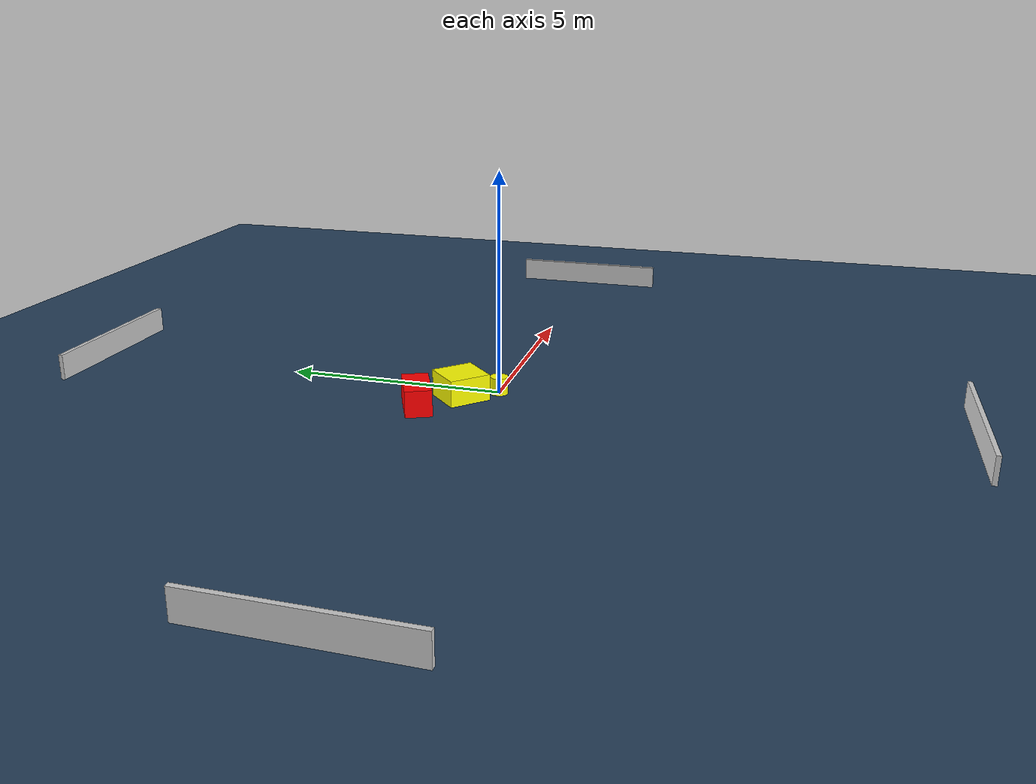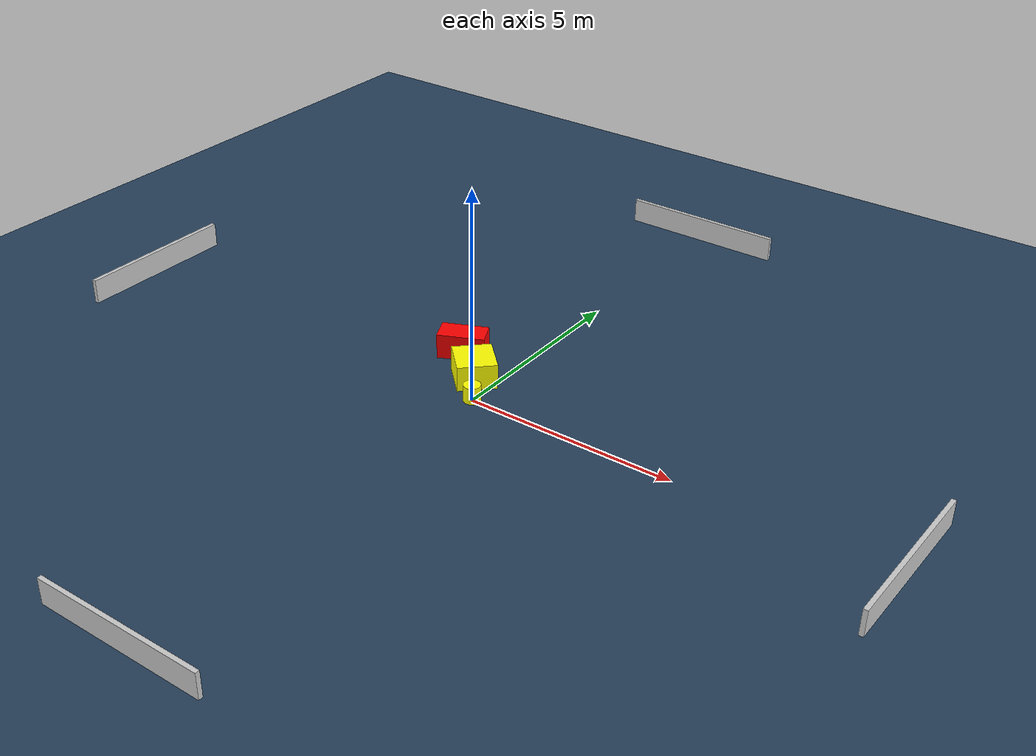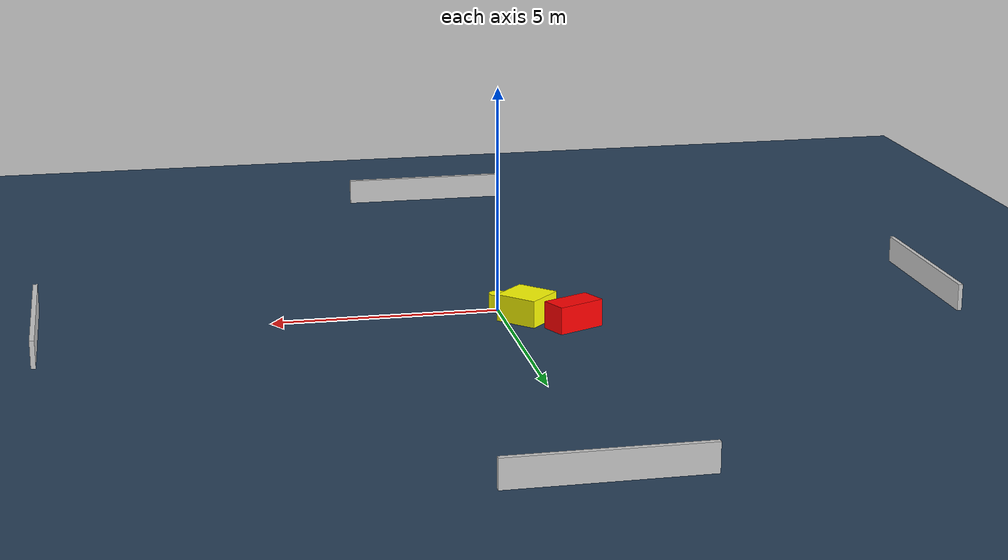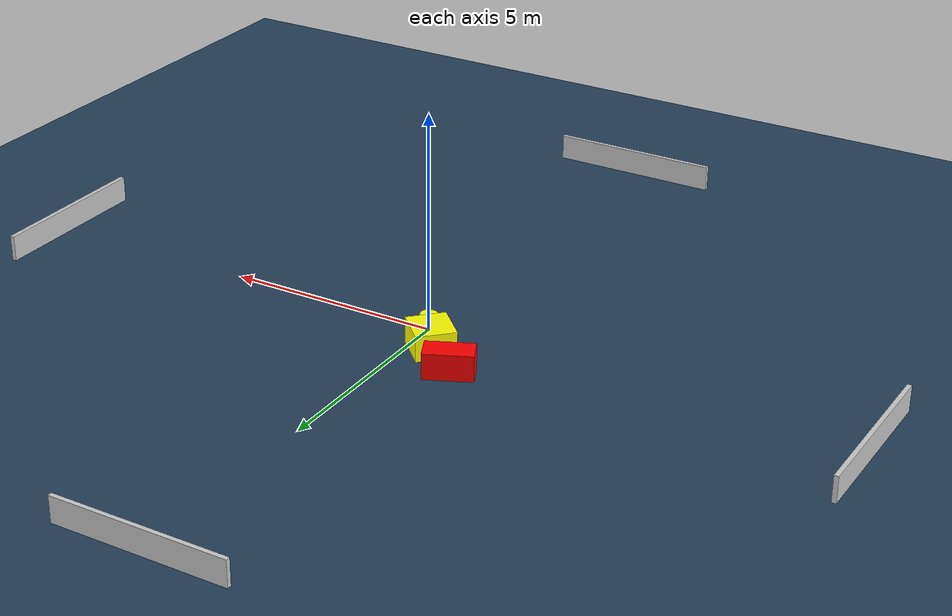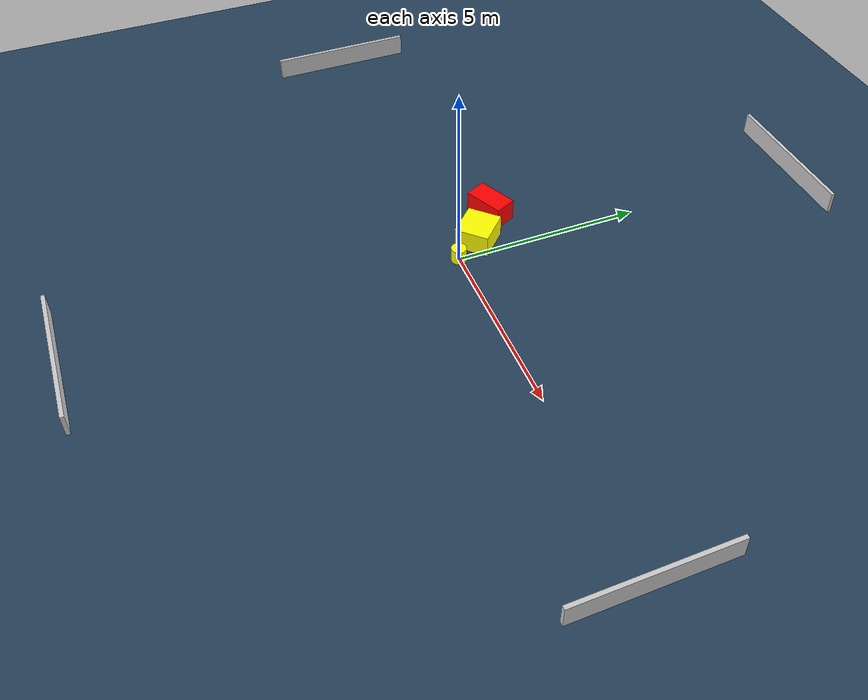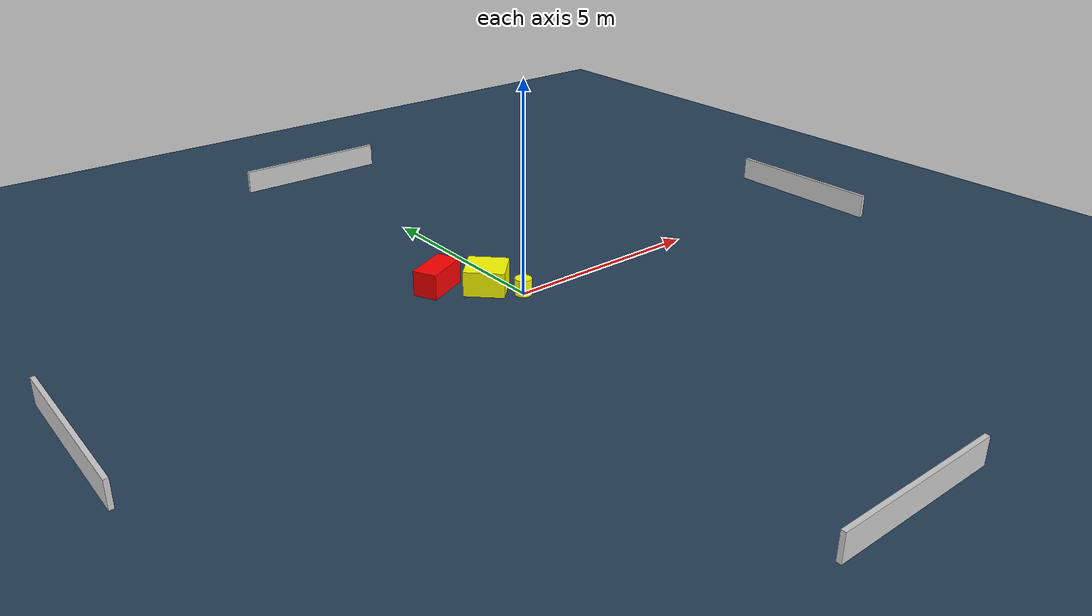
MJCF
<?xml version="1.0" ?>
<mujoco model="generated_environment">
  <option timestep="0.01" integrator="RK4" cone="elliptic"/>
  <default>
    <geom density="1"/>
  </default>
  <asset>
    <texture builtin="gradient" height="3072" name="skybox" rgb1="0.3 0.5 0.7" rgb2="0 0 0" type="skybox" width="512"/>
    <texture builtin="checker" height="300" name="groundplane" rgb1="0.2 0.3 0.4" rgb2="0.1 0.2 0.3" type="2d" width="300"/>
    <material name="groundplane" reflectance="0.2" texrepeat="5 5" texture="groundplane"/>
  </asset>
  <worldbody>
    <light dir="0 0 -1" directional="true" pos="0 0 1.5"/>
    <geom condim="3" friction="0.5 0.005 0.001" material="groundplane" name="floor" pos="0 0 0" size="0 0 0.05" type="plane"/>
    <body name="walls">
      <geom name="wall_1" condim="4" pos="-10.0 0.0 0.3" rgba="0.800000011920929 0.800000011920929 0.800000011920929 1.0" size="0.05 2.0 0.3" type="box"/>
      <geom name="wall_2" condim="4" pos="10.0 0.0 0.3" rgba="0.800000011920929 0.800000011920929 0.800000011920929 1.0" size="0.05 2.0 0.3" type="box"/>
      <geom name="wall_3" condim="4" pos="0.0 -10.0 0.3" rgba="0.800000011920929 0.800000011920929 0.800000011920929 1.0" size="2.0 0.05 0.3" type="box"/>
      <geom name="wall_4" condim="4" pos="0.0 10.0 0.3" rgba="0.800000011920929 0.800000011920929 0.800000011920929 1.0" size="2.0 0.05 0.3" type="box"/>
    </body>
    <body name="robot">
      <joint name="joint_x" type="slide" pos="0 0 0" axis="1 0 0"/>
      <joint name="joint_y" type="slide" pos="0 0 0" axis="0 1 0"/>
      <geom name="robot" type="cylinder" pos="0.0 0.0 0.2" size="0.2 0.2 0.0" mass="5.0" friction="1.0 0.005 0.0001" condim="4" rgba="1.0 1.0 0.0 1.0"/>
    </body>
    <body name="obstacle_1_movable">
      <geom name="obstacle_1_movable" condim="4" pos="-0.49313864683238445 0.737877445926591 0.3" euler="0 0 135.27320113654093" friction="0.0 0.005 0.001" rgba="1.0 1.0 0.0 1.0" size="0.4780376917844005 0.4558199413787938 0.3" type="box" mass="0.1"/>
      <joint type="free"/>
    </body>
    <body name="obstacle_2_static">
      <geom name="obstacle_2_static" condim="4" pos="-1.364859786813768 1.4605822486348472 0.3" euler="0 0 294.61377934474245" friction="0.0 0.005 0.001" rgba="1.0 0.0 0.0 1.0" size="0.29632102512186487 0.5511355675868304 0.3" type="box"/>
    </body>
  </worldbody>
  <actuator>
    <motor name="actuator_x" joint="joint_x" gear="1" ctrlrange="-1 1"/>
    <motor name="actuator_y" joint="joint_y" gear="1" ctrlrange="-1 1"/>
  </actuator>
</mujoco>
